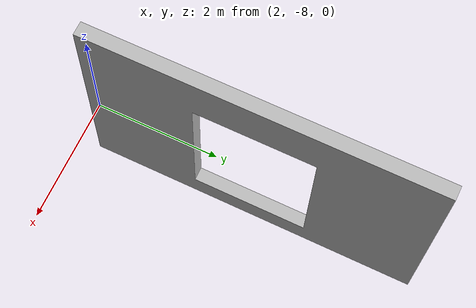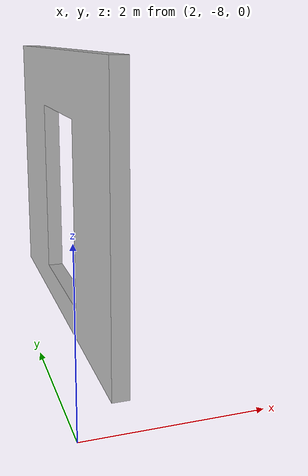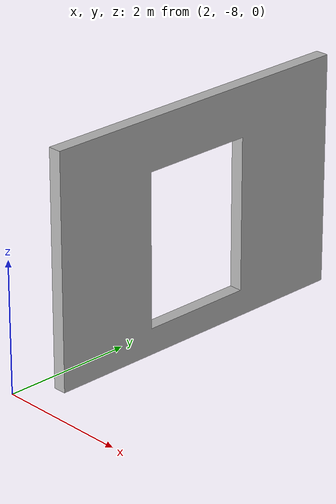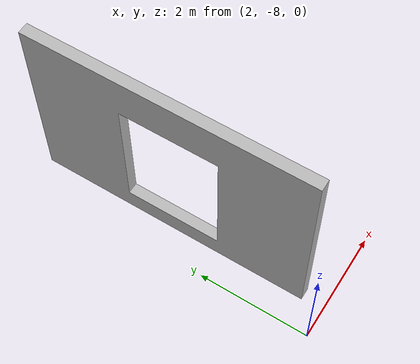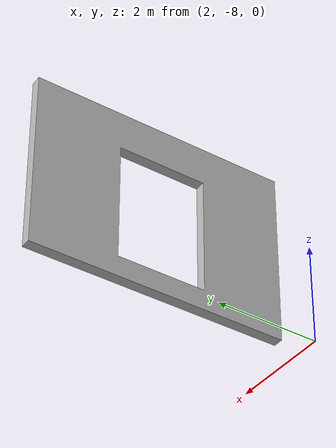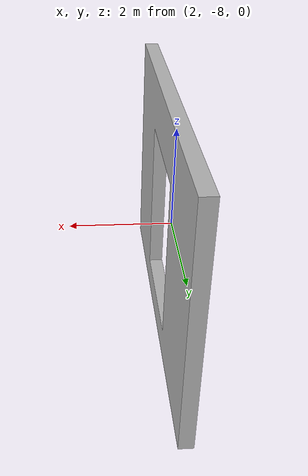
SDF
<?xml version="1.0"?>
<sdf version="1.5">
    <model name="house_wall_12">
        <static>true</static>
        <link name="link">
            <collision name="collision_wall">
                <pose>0 0 0.05 0 0 0</pose>
                <geometry>
                    <mesh>
                        <uri>model://house_scene_2_wall_12/meshes/cs12_qr.dae</uri>
                    </mesh>
                </geometry>
            </collision>
            <visual name="visual_walls">
              <pose>0 0 0.05 0 0 0</pose>
              <geometry>
              <mesh>
                 <uri>model://house_scene_2_wall_12/meshes/cs12_qr.dae</uri>
              </mesh>
              </geometry>
             </visual>
        </link>
    </model>
</sdf>
